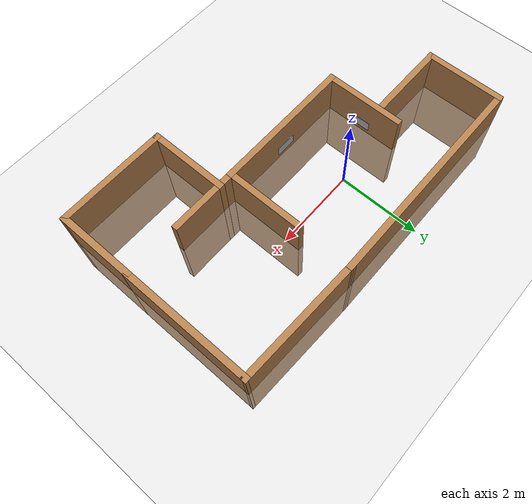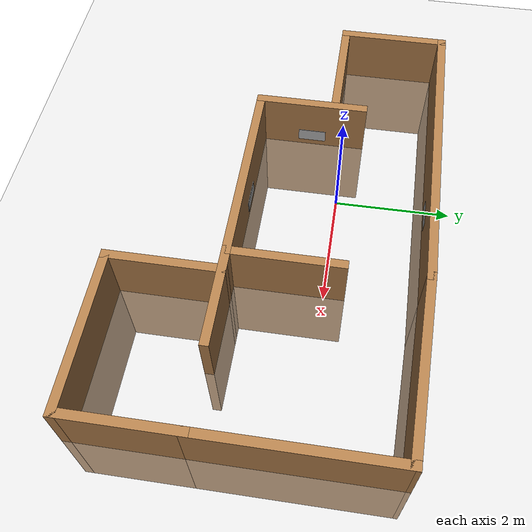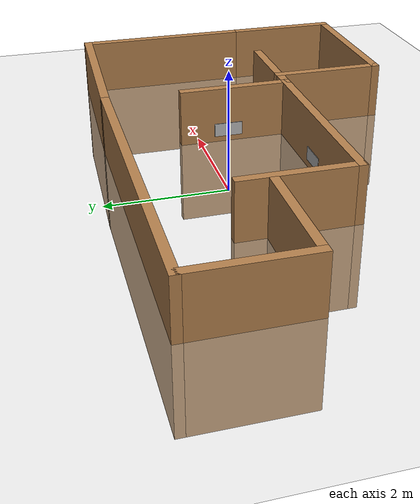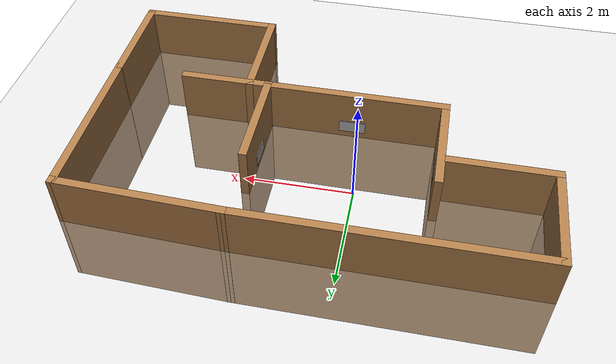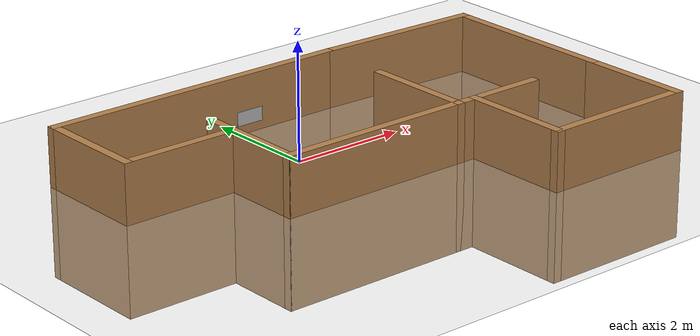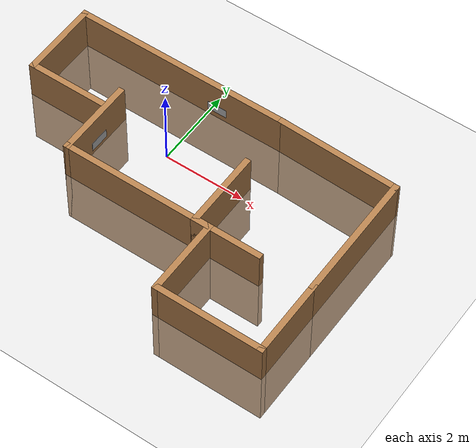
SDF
<sdf version="1.6">
 <world name="default">
  <light name="sun" type="directional">
   <pose>0 0 10 0 -0 0</pose>
   <diffuse>0.8 0.8 0.8 1</diffuse>
   <specular>0.2 0.2 0.2 1</specular>
   <attenuation>
    <range>1000</range>
    <constant>0.9</constant>
    <linear>0.01</linear>
    <quadratic>0.001</quadratic>
   </attenuation>
   <direction>-0.5 0.1 -0.9</direction>
  </light>
  <model name="ground_plane">
   <pose>0 0 0 0 -0 1.5707</pose>
   <static>1</static>
   <link name="link">
    <collision name="collision">
     <geometry><plane><normal>0 0 1</normal><size>100 100</size></plane></geometry>
     <surface>
      <contact><collide_bitmask>65535</collide_bitmask></contact>
      <friction><ode><mu>100</mu><mu2>50</mu2></ode></friction>
     </surface>
    </collision>
    <visual name="visual">
     <cast_shadows>0</cast_shadows>
     <geometry><plane><normal>0 0 1</normal><size>100 100</size></plane></geometry>
     <material>
      <script><uri>file://media/materials/scripts/gazebo.material</uri><name>Gazebo/Grey</name></script>
     </material>
    </visual>
   </link>
  </model>
  <gravity>0 0 -9.8</gravity>
  <magnetic_field>6e-06 2.3e-05 -4.2e-05</magnetic_field>
  <atmosphere type="adiabatic"/>
  <physics name="default_physics" default="0" type="ode">
   <max_step_size>0.001</max_step_size>
   <real_time_factor>1</real_time_factor>
   <real_time_update_rate>1000</real_time_update_rate>
  </physics>
  <scene><ambient>0.4 0.4 0.4 1</ambient><background>0.7 0.7 0.7 1</background><shadows>1</shadows></scene>
  <audio><device>default</device></audio>
  <spherical_coordinates>
   <surface_model>EARTH_WGS84</surface_model>
   <latitude_deg>0</latitude_deg>
   <longitude_deg>0</longitude_deg>
   <elevation>0</elevation>
   <heading_deg>0</heading_deg>
  </spherical_coordinates>
  <model name="third_test_room">
   <pose>0.711851 -0.901017 -1.52046 0 -0 0</pose>
   <link name="Wall_0">
    <collision name="Wall_0_Collision">
     <geometry><box><size>3.5 0.15 2.5</size></box></geometry>
     <pose>0 0 1.25 0 -0 0</pose>
    </collision>
    <visual name="Wall_0_Visual">
     <pose>0 0 1.25 0 -0 0</pose>
     <geometry><box><size>3.5 0.15 2.5</size></box></geometry>
     <material>
      <script><uri>file://media/materials/scripts/gazebo.material</uri><name>Gazebo/Wood</name></script>
      <ambient>1 1 1 1</ambient>
     </material>
     <meta><layer>0</layer></meta>
    </visual>
    <pose>-0.481253 -0.676253 0 0 -0 0</pose>
   </link>
   <link name="Wall_1">
    <collision name="Wall_1_Collision">
     <geometry><box><size>2 0.15 2.5</size></box></geometry>
     <pose>0 0 1.25 0 -0 0</pose>
    </collision>
    <visual name="Wall_1_Visual">
     <pose>0 0 1.25 0 -0 0</pose>
     <geometry><box><size>2 0.15 2.5</size></box></geometry>
     <material>
      <script><uri>file://media/materials/scripts/gazebo.material</uri><name>Gazebo/Wood</name></script>
      <ambient>1 1 1 1</ambient>
     </material>
     <meta><layer>0</layer></meta>
    </visual>
    <pose>1.19375 0.248747 0 0 -0 1.5708</pose>
   </link>
   <link name="Wall_10">
    <collision name="Wall_10_Collision">
     <geometry><box><size>1.75 0.15 2.5</size></box></geometry>
     <pose>0 0 1.25 0 -0 0</pose>
    </collision>
    <visual name="Wall_10_Visual">
     <pose>0 0 1.25 0 -0 0</pose>
     <geometry><box><size>1.75 0.15 2.5</size></box></geometry>
     <material>
      <script><uri>file://media/materials/scripts/gazebo.material</uri><name>Gazebo/Wood</name></script>
      <ambient>1 1 1 1</ambient>
     </material>
     <meta><layer>0</layer></meta>
    </visual>
    <pose>1.99375 -0.676253 0 0 -0 0</pose>
   </link>
   <link name="Wall_12">
    <collision name="Wall_12_Collision">
     <geometry><box><size>3.25 0.15 2.5</size></box></geometry>
     <pose>0 0 1.25 0 -0 0</pose>
    </collision>
    <visual name="Wall_12_Visual">
     <pose>0 0 1.25 0 -0 0</pose>
     <geometry><box><size>3.25 0.15 2.5</size></box></geometry>
     <material>
      <script><uri>file://media/materials/scripts/gazebo.material</uri><name>Gazebo/Wood</name></script>
      <ambient>1 1 1 1</ambient>
     </material>
     <meta><layer>0</layer></meta>
    </visual>
    <pose>4.14375 0.873747 0 0 -0 1.5708</pose>
   </link>
   <link name="Wall_13">
    <collision name="Wall_13_Collision">
     <geometry><box><size>3.0917 0.15 2.5</size></box></geometry>
     <pose>0 0 1.25 0 -0 0</pose>
    </collision>
    <visual name="Wall_13_Visual">
     <pose>0 0 1.25 0 -0 0</pose>
     <geometry><box><size>3.0917 0.15 2.5</size></box></geometry>
     <material>
      <script><uri>file://media/materials/scripts/gazebo.material</uri><name>Gazebo/Wood</name></script>
      <ambient>1 1 1 1</ambient>
     </material>
     <meta><layer>0</layer></meta>
    </visual>
    <pose>2.67375 2.47375 0 0 -0 3.10759</pose>
   </link>
   <link name="Wall_15">
    <collision name="Wall_15_Collision">
     <geometry><box><size>2 0.15 2.5</size></box></geometry>
     <pose>0 0 1.25 0 -0 0</pose>
    </collision>
    <visual name="Wall_15_Visual">
     <pose>0 0 1.25 0 -0 0</pose>
     <geometry><box><size>2 0.15 2.5</size></box></geometry>
     <material>
      <script><uri>file://media/materials/scripts/gazebo.material</uri><name>Gazebo/Wood</name></script>
      <ambient>1 1 1 1</ambient>
     </material>
     <meta><layer>0</layer></meta>
    </visual>
    <pose>4.14375 -1.60125 0 0 -0 -1.5708</pose>
   </link>
   <link name="Wall_16">
    <collision name="Wall_16_Collision">
     <geometry><box><size>2.75 0.15 2.5</size></box></geometry>
     <pose>0 0 1.25 0 -0 0</pose>
    </collision>
    <visual name="Wall_16_Visual">
     <pose>0 0 1.25 0 -0 0</pose>
     <geometry><box><size>2.75 0.15 2.5</size></box></geometry>
     <material>
      <script><uri>file://media/materials/scripts/gazebo.material</uri><name>Gazebo/Wood</name></script>
      <ambient>1 1 1 1</ambient>
     </material>
     <meta><layer>0</layer></meta>
    </visual>
    <pose>2.84375 -2.52625 0 0 -0 3.14159</pose>
   </link>
   <link name="Wall_17">
    <collision name="Wall_17_Collision">
     <geometry><box><size>2 0.15 2.5</size></box></geometry>
     <pose>0 0 1.25 0 -0 0</pose>
    </collision>
    <visual name="Wall_17_Visual">
     <pose>0 0 1.25 0 -0 0</pose>
     <geometry><box><size>2 0.15 2.5</size></box></geometry>
     <material>
      <script><uri>file://media/materials/scripts/gazebo.material</uri><name>Gazebo/Wood</name></script>
      <ambient>1 1 1 1</ambient>
     </material>
     <meta><layer>0</layer></meta>
    </visual>
    <pose>1.54375 -1.60125 0 0 -0 1.5708</pose>
   </link>
   <link name="Wall_3">
    <collision name="Wall_3_Collision">
     <geometry><box><size>5.5 0.15 2.5</size></box></geometry>
     <pose>0 0 1.25 0 -0 0</pose>
    </collision>
    <visual name="Wall_3_Visual">
     <pose>0 0 1.25 0 -0 0</pose>
     <geometry><box><size>5.5 0.15 2.5</size></box></geometry>
     <material>
      <script><uri>file://media/materials/scripts/gazebo.material</uri><name>Gazebo/Wood</name></script>
      <ambient>1 1 1 1</ambient>
     </material>
     <meta><layer>0</layer></meta>
    </visual>
    <pose>-1.47125 2.52375 0 0 -0 3.14159</pose>
   </link>
   <link name="Wall_5">
    <collision name="Wall_5_Collision">
     <geometry><box><size>2 0.15 2.5</size></box></geometry>
     <pose>0 0 1.25 0 -0 0</pose>
    </collision>
    <visual name="Wall_5_Visual">
     <pose>0 0 1.25 0 -0 0</pose>
     <geometry><box><size>2 0.15 2.5</size></box></geometry>
     <material>
      <script><uri>file://media/materials/scripts/gazebo.material</uri><name>Gazebo/Wood</name></script>
      <ambient>1 1 1 1</ambient>
     </material>
     <meta><layer>0</layer></meta>
    </visual>
    <pose>-2.15625 0.248747 0 0 -0 1.5708</pose>
   </link>
   <link name="Wall_7">
    <collision name="Wall_7_Collision">
     <geometry><box><size>2 0.15 2.5</size></box></geometry>
     <pose>0 0 1.25 0 -0 0</pose>
    </collision>
    <visual name="Wall_7_Visual">
     <pose>0 0 1.25 0 -0 0</pose>
     <geometry><box><size>2 0.15 2.5</size></box></geometry>
     <material>
      <script><uri>file://media/materials/scripts/gazebo.material</uri><name>Gazebo/Wood</name></script>
      <ambient>1 1 1 1</ambient>
     </material>
     <meta><layer>0</layer></meta>
    </visual>
    <pose>-4.14625 1.59875 0 0 -0 -1.5708</pose>
   </link>
   <link name="Wall_8">
    <collision name="Wall_8_Collision">
     <geometry><box><size>2 0.15 2.5</size></box></geometry>
     <pose>0 0 1.25 0 -0 0</pose>
    </collision>
    <visual name="Wall_8_Visual">
     <pose>0 0 1.25 0 -0 0</pose>
     <geometry><box><size>2 0.15 2.5</size></box></geometry>
     <material>
      <script><uri>file://media/materials/scripts/gazebo.material</uri><name>Gazebo/Wood</name></script>
      <ambient>1 1 1 1</ambient>
     </material>
     <meta><layer>0</layer></meta>
    </visual>
    <pose>-3.22125 0.673747 0 0 -0 0</pose>
   </link>
   <static>1</static>
  </model>
  <model name="dog_panel_0">
   <static>1</static>
   <link name="box">
    <collision name="collision"><geometry><box><size>0.5 0.025 0.24</size></box></geometry></collision>
    <visual name="visual">
     <geometry><box><size>0.5 0.025 0.24</size></box></geometry>
     <material>
      <script>
       <uri>model://dog_panel/materials/scripts</uri>
       <uri>model://dog_panel/materials/textures</uri>
       <name>dog_panel</name>
      </script>
     </material>
    </visual>
   </link>
   <pose>0.239761 1.55822 0.258687 0 -0 0</pose>
  </model>
  <light name="user_spot_light_0" type="spot">
   <pose>3.36982 -0.206544 1 0 -0 0</pose>
   <diffuse>0.5 0.5 0.5 1</diffuse>
   <specular>0.1 0.1 0.1 1</specular>
   <direction>0 0 -1</direction>
   <attenuation>
    <range>20</range>
    <constant>0.5</constant>
    <linear>0.01</linear>
    <quadratic>0.001</quadratic>
   </attenuation>
   <cast_shadows>0</cast_shadows>
   <spot><inner_angle>0.6</inner_angle><outer_angle>1</outer_angle><falloff>1</falloff></spot>
  </light>
  <light name="user_spot_light_1" type="spot">
   <pose>3.70441 -2.76738 1 0 -0 0</pose>
   <diffuse>0.5 0.5 0.5 1</diffuse>
   <specular>0.1 0.1 0.1 1</specular>
   <direction>0 0 -1</direction>
   <attenuation>
    <range>20</range>
    <constant>0.5</constant>
    <linear>0.01</linear>
    <quadratic>0.001</quadratic>
   </attenuation>
   <cast_shadows>0</cast_shadows>
   <spot><inner_angle>0.6</inner_angle><outer_angle>1</outer_angle><falloff>1</falloff></spot>
  </light>
  <light name="user_spot_light_2" type="spot">
   <pose>-2.64303 0.58856 1 0 -0 0</pose>
   <diffuse>0.5 0.5 0.5 1</diffuse>
   <specular>0.1 0.1 0.1 1</specular>
   <direction>0 0 -1</direction>
   <attenuation>
    <range>20</range>
    <constant>0.5</constant>
    <linear>0.01</linear>
    <quadratic>0.001</quadratic>
   </attenuation>
   <cast_shadows>0</cast_shadows>
   <spot><inner_angle>0.6</inner_angle><outer_angle>1</outer_angle><falloff>1</falloff></spot>
  </light>
  <model name="cat_panel_1">
   <static>1</static>
   <link name="box">
    <collision name="collision"><geometry><box><size>0.5 0.025 0.24</size></box></geometry></collision>
    <visual name="visual">
     <geometry><box><size>0.5 0.025 0.24</size></box></geometry>
     <material>
      <script>
       <uri>model://cat_panel/materials/scripts</uri>
       <uri>model://cat_panel/materials/textures</uri>
       <name>cat_panel</name>
      </script>
     </material>
    </visual>
   </link>
   <pose>-1.37452 -0.61835 0.223677 0 -0 1.5707</pose>
  </model>
  <model name="dog_panel">
   <static>1</static>
   <link name="box">
    <collision name="collision"><geometry><box><size>0.5 0.025 0.24</size></box></geometry></collision>
    <visual name="visual">
     <geometry><box><size>0.5 0.025 0.24</size></box></geometry>
     <material>
      <script>
       <uri>model://dog_panel/materials/scripts</uri>
       <uri>model://dog_panel/materials/textures</uri>
       <name>dog_panel</name>
      </script>
     </material>
    </visual>
   </link>
   <pose>0.253517 -1.50495 0.238864 0 -0 0</pose>
  </model>
  <model name="dog_panel_1">
   <static>1</static>
   <link name="box">
    <collision name="collision"><geometry><box><size>0.5 0.025 0.24</size></box></geometry></collision>
    <visual name="visual">
     <geometry><box><size>0.5 0.025 0.24</size></box></geometry>
     <material>
      <script>
       <uri>model://dog_panel/materials/scripts</uri>
       <uri>model://dog_panel/materials/textures</uri>
       <name>dog_panel</name>
      </script>
     </material>
    </visual>
   </link>
   <pose>1.83075 -0.506348 0.210803 0 -0 1.5707</pose>
  </model>
 </world>
</sdf>
